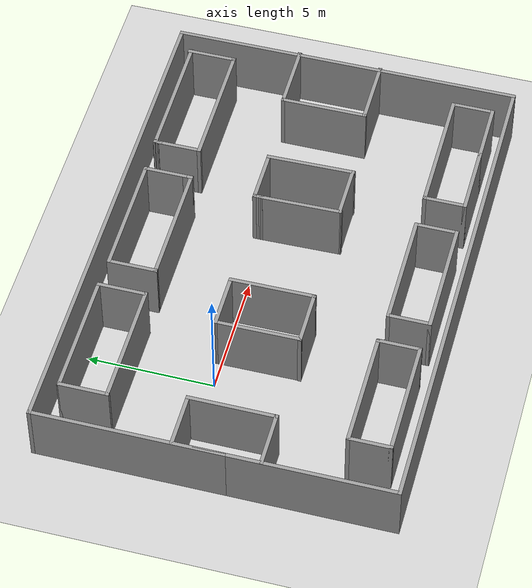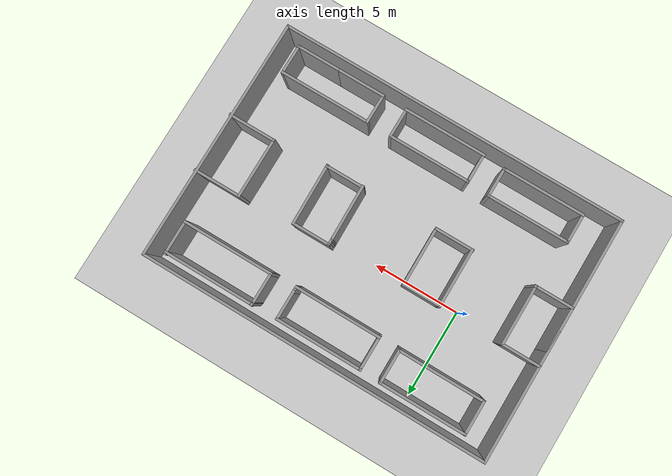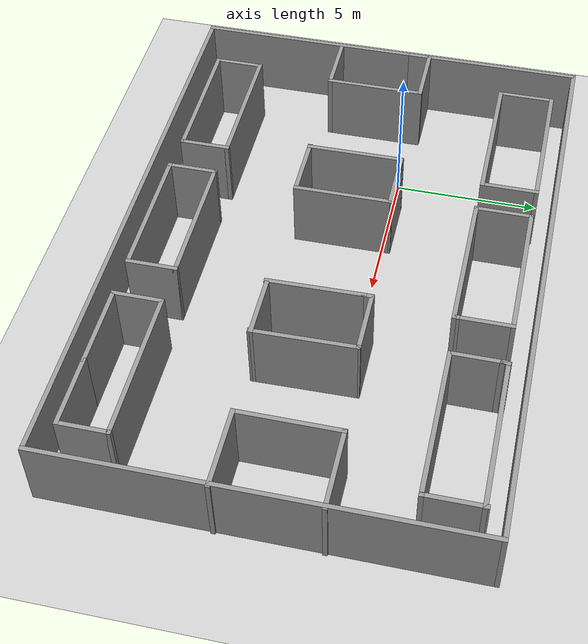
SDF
<sdf version="1.7">
 <world name="default">
  <model name="ground_plane">
   <static>1</static>
   <link name="link">
    <collision name="collision">
     <geometry><plane><normal>0 0 1</normal><size>100 100</size></plane></geometry>
     <surface><friction><ode><mu>100</mu><mu2>50</mu2></ode></friction></surface>
    </collision>
    <visual name="visual">
     <cast_shadows>0</cast_shadows>
     <geometry><plane><normal>0 0 1</normal><size>100 100</size></plane></geometry>
     <material>
      <script><uri>file://media/materials/scripts/gazebo.material</uri><name>Gazebo/Grey</name></script>
     </material>
    </visual>
   </link>
  </model>
  <light name="sun" type="directional">
   <pose>0 0 10 0 -0 0</pose>
   <diffuse>0.8 0.8 0.8 1</diffuse>
   <specular>0.2 0.2 0.2 1</specular>
   <attenuation>
    <range>1000</range>
    <constant>0.9</constant>
    <linear>0.01</linear>
    <quadratic>0.001</quadratic>
   </attenuation>
   <direction>-0.5 0.1 -0.9</direction>
   <spot><inner_angle>0</inner_angle><outer_angle>0</outer_angle><falloff>0</falloff></spot>
  </light>
  <scene><shadows>0</shadows><ambient>0.4 0.4 0.4 1</ambient><background>0.7 0.7 0.7 1</background></scene>
  <physics type="ode">
   <real_time_update_rate>1000</real_time_update_rate>
   <max_step_size>0.001</max_step_size>
   <real_time_factor>1</real_time_factor>
   <ode>
    <solver>
     <type>quick</type>
     <iters>150</iters>
     <precon_iters>0</precon_iters>
     <sor>1.4</sor>
     <use_dynamic_moi_rescaling>1</use_dynamic_moi_rescaling>
    </solver>
    <constraints>
     <cfm>1e-05</cfm>
     <erp>0.2</erp>
     <contact_max_correcting_vel>2000</contact_max_correcting_vel>
     <contact_surface_layer>0.01</contact_surface_layer>
    </constraints>
   </ode>
  </physics>
  <gravity>0 0 -9.8</gravity>
  <magnetic_field>6e-06 2.3e-05 -4.2e-05</magnetic_field>
  <atmosphere type="adiabatic"/>
  <audio><device>default</device></audio>
  <spherical_coordinates>
   <surface_model>EARTH_WGS84</surface_model>
   <latitude_deg>0</latitude_deg>
   <longitude_deg>0</longitude_deg>
   <elevation>0</elevation>
   <heading_deg>0</heading_deg>
  </spherical_coordinates>
  <model name="Untitled">
   <pose>5.33523 -1.27493 0 0 -0 0</pose>
   <link name="Wall_101">
    <collision name="Wall_101_Collision">
     <geometry><box><size>2 0.15 2.5</size></box></geometry>
     <pose>0 0 1.25 0 -0 0</pose>
    </collision>
    <visual name="Wall_101_Visual">
     <pose>0 0 1.25 0 -0 0</pose>
     <geometry><box><size>2 0.15 2.5</size></box></geometry>
     <material>
      <script><uri>file://media/materials/scripts/gazebo.material</uri><name>Gazebo/Grey</name></script>
      <ambient>1 1 1 1</ambient>
     </material>
     <meta><layer>0</layer></meta>
    </visual>
    <pose>-3.60655 5.34323 0 0 -0 1.5708</pose>
   </link>
   <link name="Wall_102">
    <collision name="Wall_102_Collision">
     <geometry><box><size>5 0.15 2.5</size></box></geometry>
     <pose>0 0 1.25 0 -0 0</pose>
    </collision>
    <visual name="Wall_102_Visual">
     <pose>0 0 1.25 0 -0 0</pose>
     <geometry><box><size>5 0.15 2.5</size></box></geometry>
     <material>
      <script><uri>file://media/materials/scripts/gazebo.material</uri><name>Gazebo/Grey</name></script>
      <ambient>1 1 1 1</ambient>
     </material>
     <meta><layer>0</layer></meta>
    </visual>
    <pose>-6.03155 6.26823 0 0 -0 3.14159</pose>
   </link>
   <link name="Wall_103">
    <collision name="Wall_103_Collision">
     <geometry><box><size>2 0.15 2.5</size></box></geometry>
     <pose>0 0 1.25 0 -0 0</pose>
    </collision>
    <visual name="Wall_103_Visual">
     <pose>0 0 1.25 0 -0 0</pose>
     <geometry><box><size>2 0.15 2.5</size></box></geometry>
     <material>
      <script><uri>file://media/materials/scripts/gazebo.material</uri><name>Gazebo/Grey</name></script>
      <ambient>1 1 1 1</ambient>
     </material>
     <meta><layer>0</layer></meta>
    </visual>
    <pose>-8.45655 5.34323 0 0 -0 -1.5708</pose>
   </link>
   <link name="Wall_104">
    <collision name="Wall_104_Collision">
     <geometry><box><size>5 0.15 2.5</size></box></geometry>
     <pose>0 0 1.25 0 -0 0</pose>
    </collision>
    <visual name="Wall_104_Visual">
     <pose>0 0 1.25 0 -0 0</pose>
     <geometry><box><size>5 0.15 2.5</size></box></geometry>
     <material>
      <script><uri>file://media/materials/scripts/gazebo.material</uri><name>Gazebo/Grey</name></script>
      <ambient>1 1 1 1</ambient>
     </material>
     <meta><layer>0</layer></meta>
    </visual>
    <pose>-6.03155 4.41823 0 0 -0 0</pose>
   </link>
   <link name="Wall_106">
    <collision name="Wall_106_Collision">
     <geometry><box><size>3.40801 0.15 2.5</size></box></geometry>
     <pose>0 0 1.25 0 -0 0</pose>
    </collision>
    <visual name="Wall_106_Visual">
     <pose>0 0 1.25 0 -0 0</pose>
     <geometry><box><size>3.40801 0.15 2.5</size></box></geometry>
     <material>
      <script><uri>file://media/materials/scripts/gazebo.material</uri><name>Gazebo/Grey</name></script>
      <ambient>1 1 1 1</ambient>
     </material>
     <meta><layer>0</layer></meta>
    </visual>
    <pose>-4.19944 -0.126573 0 0 -0 -1.56462</pose>
   </link>
   <link name="Wall_107">
    <collision name="Wall_107_Collision">
     <geometry><box><size>2.25 0.15 2.5</size></box></geometry>
     <pose>0 0 1.25 0 -0 0</pose>
    </collision>
    <visual name="Wall_107_Visual">
     <pose>0 0 1.25 0 -0 0</pose>
     <geometry><box><size>2.25 0.15 2.5</size></box></geometry>
     <material>
      <script><uri>file://media/materials/scripts/gazebo.material</uri><name>Gazebo/Grey</name></script>
      <ambient>1 1 1 1</ambient>
     </material>
     <meta><layer>0</layer></meta>
    </visual>
    <pose>-3.1595 -1.75555 0 0 -0 0</pose>
   </link>
   <link name="Wall_108">
    <collision name="Wall_108_Collision">
     <geometry><box><size>3.40801 0.15 2.5</size></box></geometry>
     <pose>0 0 1.25 0 -0 0</pose>
    </collision>
    <visual name="Wall_108_Visual">
     <pose>0 0 1.25 0 -0 0</pose>
     <geometry><box><size>3.40801 0.15 2.5</size></box></geometry>
     <material>
      <script><uri>file://media/materials/scripts/gazebo.material</uri><name>Gazebo/Grey</name></script>
      <ambient>1 1 1 1</ambient>
     </material>
     <meta><layer>0</layer></meta>
    </visual>
    <pose>-2.09944 -0.126573 0 0 -0 1.57697</pose>
   </link>
   <link name="Wall_109">
    <collision name="Wall_109_Collision">
     <geometry><box><size>2.25 0.15 2.5</size></box></geometry>
     <pose>0 0 1.25 0 -0 0</pose>
    </collision>
    <visual name="Wall_109_Visual">
     <pose>0 0 1.25 0 -0 0</pose>
     <geometry><box><size>2.25 0.15 2.5</size></box></geometry>
     <material>
      <script><uri>file://media/materials/scripts/gazebo.material</uri><name>Gazebo/Grey</name></script>
      <ambient>1 1 1 1</ambient>
     </material>
     <meta><layer>0</layer></meta>
    </visual>
    <pose>-3.1595 1.5024 0 0 -0 3.14159</pose>
   </link>
   <link name="Wall_111">
    <collision name="Wall_111_Collision">
     <geometry><box><size>3.31069 0.15 2.5</size></box></geometry>
     <pose>0 0 1.25 0 -0 0</pose>
    </collision>
    <visual name="Wall_111_Visual">
     <pose>0 0 1.25 0 -0 0</pose>
     <geometry><box><size>3.31069 0.15 2.5</size></box></geometry>
     <material>
      <script><uri>file://media/materials/scripts/gazebo.material</uri><name>Gazebo/Grey</name></script>
      <ambient>1 1 1 1</ambient>
     </material>
     <meta><layer>0</layer></meta>
    </visual>
    <pose>2.18386 -0.108239 0 0 -0 -1.55144</pose>
   </link>
   <link name="Wall_112">
    <collision name="Wall_112_Collision">
     <geometry><box><size>2.25 0.15 2.5</size></box></geometry>
     <pose>0 0 1.25 0 -0 0</pose>
    </collision>
    <visual name="Wall_112_Visual">
     <pose>0 0 1.25 0 -0 0</pose>
     <geometry><box><size>2.25 0.15 2.5</size></box></geometry>
     <material>
      <script><uri>file://media/materials/scripts/gazebo.material</uri><name>Gazebo/Grey</name></script>
      <ambient>1 1 1 1</ambient>
     </material>
     <meta><layer>0</layer></meta>
    </visual>
    <pose>3.26445 -1.6577 0 0 -0 0</pose>
   </link>
   <link name="Wall_113">
    <collision name="Wall_113_Collision">
     <geometry><box><size>3.56065 0.15 2.5</size></box></geometry>
     <pose>0 0 1.25 0 -0 0</pose>
    </collision>
    <visual name="Wall_113_Visual">
     <pose>0 0 1.25 0 -0 0</pose>
     <geometry><box><size>3.56065 0.15 2.5</size></box></geometry>
     <material>
      <script><uri>file://media/materials/scripts/gazebo.material</uri><name>Gazebo/Grey</name></script>
      <ambient>1 1 1 1</ambient>
     </material>
     <meta><layer>0</layer></meta>
    </visual>
    <pose>4.28386 0.016761 0 0 -0 1.58874</pose>
   </link>
   <link name="Wall_114">
    <collision name="Wall_114_Collision">
     <geometry><box><size>2.25 0.15 2.5</size></box></geometry>
     <pose>0 0 1.25 0 -0 0</pose>
    </collision>
    <visual name="Wall_114_Visual">
     <pose>0 0 1.25 0 -0 0</pose>
     <geometry><box><size>2.25 0.15 2.5</size></box></geometry>
     <material>
      <script><uri>file://media/materials/scripts/gazebo.material</uri><name>Gazebo/Grey</name></script>
      <ambient>1 1 1 1</ambient>
     </material>
     <meta><layer>0</layer></meta>
    </visual>
    <pose>3.20327 1.72181 0 0 -0 3.14159</pose>
   </link>
   <link name="Wall_115">
    <collision name="Wall_115_Collision">
     <geometry><box><size>0.4 0.15 2.5</size></box></geometry>
     <pose>0 0 1.25 0 -0 0</pose>
    </collision>
    <visual name="Wall_115_Visual">
     <pose>0 0 1.25 0 -0 0</pose>
     <geometry><box><size>0.4 0.15 2.5</size></box></geometry>
     <material>
      <script><uri>file://media/materials/scripts/gazebo.material</uri><name>Gazebo/Grey</name></script>
      <ambient>1 1 1 1</ambient>
     </material>
     <meta><layer>0</layer></meta>
    </visual>
    <pose>2.15327 1.59681 0 0 -0 -1.5708</pose>
   </link>
   <link name="Wall_117">
    <collision name="Wall_117_Collision">
     <geometry><box><size>2.25 0.15 2.5</size></box></geometry>
     <pose>0 0 1.25 0 -0 0</pose>
    </collision>
    <visual name="Wall_117_Visual">
     <pose>0 0 1.25 0 -0 0</pose>
     <geometry><box><size>2.25 0.15 2.5</size></box></geometry>
     <material>
      <script><uri>file://media/materials/scripts/gazebo.material</uri><name>Gazebo/Grey</name></script>
      <ambient>1 1 1 1</ambient>
     </material>
     <meta><layer>0</layer></meta>
    </visual>
    <pose>-8.89305 1.52827 0 0 -0 0</pose>
   </link>
   <link name="Wall_118">
    <collision name="Wall_118_Collision">
     <geometry><box><size>3.5 0.15 2.5</size></box></geometry>
     <pose>0 0 1.25 0 -0 0</pose>
    </collision>
    <visual name="Wall_118_Visual">
     <pose>0 0 1.25 0 -0 0</pose>
     <geometry><box><size>3.5 0.15 2.5</size></box></geometry>
     <material>
      <script><uri>file://media/materials/scripts/gazebo.material</uri><name>Gazebo/Grey</name></script>
      <ambient>1 1 1 1</ambient>
     </material>
     <meta><layer>0</layer></meta>
    </visual>
    <pose>-7.84305 -0.146726 0 0 -0 -1.5708</pose>
   </link>
   <link name="Wall_119">
    <collision name="Wall_119_Collision">
     <geometry><box><size>2.25 0.15 2.5</size></box></geometry>
     <pose>0 0 1.25 0 -0 0</pose>
    </collision>
    <visual name="Wall_119_Visual">
     <pose>0 0 1.25 0 -0 0</pose>
     <geometry><box><size>2.25 0.15 2.5</size></box></geometry>
     <material>
      <script><uri>file://media/materials/scripts/gazebo.material</uri><name>Gazebo/Grey</name></script>
      <ambient>1 1 1 1</ambient>
     </material>
     <meta><layer>0</layer></meta>
    </visual>
    <pose>-8.89305 -1.82173 0 0 -0 3.14159</pose>
   </link>
   <link name="Wall_121">
    <collision name="Wall_121_Collision">
     <geometry><box><size>2.75 0.15 2.5</size></box></geometry>
     <pose>0 0 1.25 0 -0 0</pose>
    </collision>
    <visual name="Wall_121_Visual">
     <pose>0 0 1.25 0 -0 0</pose>
     <geometry><box><size>2.75 0.15 2.5</size></box></geometry>
     <material>
      <script><uri>file://media/materials/scripts/gazebo.material</uri><name>Gazebo/Grey</name></script>
      <ambient>1 1 1 1</ambient>
     </material>
     <meta><layer>0</layer></meta>
    </visual>
    <pose>8.6539 1.95388 0 0 -0 3.14159</pose>
   </link>
   <link name="Wall_122">
    <collision name="Wall_122_Collision">
     <geometry><box><size>3.5 0.15 2.5</size></box></geometry>
     <pose>0 0 1.25 0 -0 0</pose>
    </collision>
    <visual name="Wall_122_Visual">
     <pose>0 0 1.25 0 -0 0</pose>
     <geometry><box><size>3.5 0.15 2.5</size></box></geometry>
     <material>
      <script><uri>file://media/materials/scripts/gazebo.material</uri><name>Gazebo/Grey</name></script>
      <ambient>1 1 1 1</ambient>
     </material>
     <meta><layer>0</layer></meta>
    </visual>
    <pose>7.3539 0.278877 0 0 -0 -1.5708</pose>
   </link>
   <link name="Wall_123">
    <collision name="Wall_123_Collision">
     <geometry><box><size>2.75 0.15 2.5</size></box></geometry>
     <pose>0 0 1.25 0 -0 0</pose>
    </collision>
    <visual name="Wall_123_Visual">
     <pose>0 0 1.25 0 -0 0</pose>
     <geometry><box><size>2.75 0.15 2.5</size></box></geometry>
     <material>
      <script><uri>file://media/materials/scripts/gazebo.material</uri><name>Gazebo/Grey</name></script>
      <ambient>1 1 1 1</ambient>
     </material>
     <meta><layer>0</layer></meta>
    </visual>
    <pose>8.6539 -1.39612 0 0 -0 0</pose>
   </link>
   <link name="Wall_66">
    <collision name="Wall_66_Collision">
     <geometry><box><size>7.75 0.15 2.5</size></box></geometry>
     <pose>0 0 1.25 0 -0 0</pose>
    </collision>
    <visual name="Wall_66_Visual">
     <pose>0 0 1.25 0 -0 0</pose>
     <geometry><box><size>7.75 0.15 2.5</size></box></geometry>
     <material>
      <script><uri>file://media/materials/scripts/gazebo.material</uri><name>Gazebo/Grey</name></script>
      <ambient>1 1 1 1</ambient>
     </material>
     <meta><layer>0</layer></meta>
    </visual>
    <pose>-9.9539 -3.125 0 0 -0 -1.5708</pose>
   </link>
   <link name="Wall_67">
    <collision name="Wall_67_Collision">
     <geometry><box><size>20 0.15 2.5</size></box></geometry>
     <pose>0 0 1.25 0 -0 0</pose>
    </collision>
    <visual name="Wall_67_Visual">
     <pose>0 0 1.25 0 -0 0</pose>
     <geometry><box><size>20 0.15 2.5</size></box></geometry>
     <material>
      <script><uri>file://media/materials/scripts/gazebo.material</uri><name>Gazebo/Grey</name></script>
      <ambient>1 1 1 1</ambient>
     </material>
     <meta><layer>0</layer></meta>
    </visual>
    <pose>-0.028904 -6.925 0 0 -0 0</pose>
   </link>
   <link name="Wall_68">
    <collision name="Wall_68_Collision">
     <geometry><box><size>14 0.15 2.5</size></box></geometry>
     <pose>0 0 1.25 0 -0 0</pose>
    </collision>
    <visual name="Wall_68_Visual">
     <pose>0 0 1.25 0 -0 0</pose>
     <geometry><box><size>14 0.15 2.5</size></box></geometry>
     <material>
      <script><uri>file://media/materials/scripts/gazebo.material</uri><name>Gazebo/Grey</name></script>
      <ambient>1 1 1 1</ambient>
     </material>
     <meta><layer>0</layer></meta>
    </visual>
    <pose>9.8961 0 0 0 -0 1.5708</pose>
   </link>
   <link name="Wall_69">
    <collision name="Wall_69_Collision">
     <geometry><box><size>20 0.15 2.5</size></box></geometry>
     <pose>0 0 1.25 0 -0 0</pose>
    </collision>
    <visual name="Wall_69_Visual">
     <pose>0 0 1.25 0 -0 0</pose>
     <geometry><box><size>20 0.15 2.5</size></box></geometry>
     <material>
      <script><uri>file://media/materials/scripts/gazebo.material</uri><name>Gazebo/Grey</name></script>
      <ambient>1 1 1 1</ambient>
     </material>
     <meta><layer>0</layer></meta>
    </visual>
    <pose>-0.028904 6.925 0 0 -0 3.14159</pose>
   </link>
   <link name="Wall_70">
    <collision name="Wall_70_Collision">
     <geometry><box><size>7.5 0.15 2.5</size></box></geometry>
     <pose>0 0 1.25 0 -0 0</pose>
    </collision>
    <visual name="Wall_70_Visual">
     <pose>0 0 1.25 0 -0 0</pose>
     <geometry><box><size>7.5 0.15 2.5</size></box></geometry>
     <material>
      <script><uri>file://media/materials/scripts/gazebo.material</uri><name>Gazebo/Grey</name></script>
      <ambient>1 1 1 1</ambient>
     </material>
     <meta><layer>0</layer></meta>
    </visual>
    <pose>-9.9539 3.25 0 0 -0 -1.5708</pose>
   </link>
   <link name="Wall_72">
    <collision name="Wall_72_Collision">
     <geometry><box><size>2.5 0.15 2.5</size></box></geometry>
     <pose>0 0 1.25 0 -0 0</pose>
    </collision>
    <visual name="Wall_72_Visual">
     <pose>0 0 1.25 0 -0 0</pose>
     <geometry><box><size>2.5 0.15 2.5</size></box></geometry>
     <material>
      <script><uri>file://media/materials/scripts/gazebo.material</uri><name>Gazebo/Grey</name></script>
      <ambient>1 1 1 1</ambient>
     </material>
     <meta><layer>0</layer></meta>
    </visual>
    <pose>7.67157 -6.28468 0 0 -0 0</pose>
   </link>
   <link name="Wall_73">
    <collision name="Wall_73_Collision">
     <geometry><box><size>1.75 0.15 2.5</size></box></geometry>
     <pose>0 0 1.25 0 -0 0</pose>
    </collision>
    <visual name="Wall_73_Visual">
     <pose>0 0 1.25 0 -0 0</pose>
     <geometry><box><size>1.75 0.15 2.5</size></box></geometry>
     <material>
      <script><uri>file://media/materials/scripts/gazebo.material</uri><name>Gazebo/Grey</name></script>
      <ambient>1 1 1 1</ambient>
     </material>
     <meta><layer>0</layer></meta>
    </visual>
    <pose>8.84657 -5.48468 0 0 -0 1.5708</pose>
   </link>
   <link name="Wall_74">
    <collision name="Wall_74_Collision">
     <geometry><box><size>5.25 0.15 2.5</size></box></geometry>
     <pose>0 0 1.25 0 -0 0</pose>
    </collision>
    <visual name="Wall_74_Visual">
     <pose>0 0 1.25 0 -0 0</pose>
     <geometry><box><size>5.25 0.15 2.5</size></box></geometry>
     <material>
      <script><uri>file://media/materials/scripts/gazebo.material</uri><name>Gazebo/Grey</name></script>
      <ambient>1 1 1 1</ambient>
     </material>
     <meta><layer>0</layer></meta>
    </visual>
    <pose>6.29657 -4.68468 0 0 -0 3.14159</pose>
   </link>
   <link name="Wall_75">
    <collision name="Wall_75_Collision">
     <geometry><box><size>1.75 0.15 2.5</size></box></geometry>
     <pose>0 0 1.25 0 -0 0</pose>
    </collision>
    <visual name="Wall_75_Visual">
     <pose>0 0 1.25 0 -0 0</pose>
     <geometry><box><size>1.75 0.15 2.5</size></box></geometry>
     <material>
      <script><uri>file://media/materials/scripts/gazebo.material</uri><name>Gazebo/Grey</name></script>
      <ambient>1 1 1 1</ambient>
     </material>
     <meta><layer>0</layer></meta>
    </visual>
    <pose>3.74657 -5.48468 0 0 -0 -1.5708</pose>
   </link>
   <link name="Wall_76">
    <collision name="Wall_76_Collision">
     <geometry><box><size>2.9 0.15 2.5</size></box></geometry>
     <pose>0 0 1.25 0 -0 0</pose>
    </collision>
    <visual name="Wall_76_Visual">
     <pose>0 0 1.25 0 -0 0</pose>
     <geometry><box><size>2.9 0.15 2.5</size></box></geometry>
     <material>
      <script><uri>file://media/materials/scripts/gazebo.material</uri><name>Gazebo/Grey</name></script>
      <ambient>1 1 1 1</ambient>
     </material>
     <meta><layer>0</layer></meta>
    </visual>
    <pose>5.12157 -6.28468 0 0 -0 0</pose>
   </link>
   <link name="Wall_78">
    <collision name="Wall_78_Collision">
     <geometry><box><size>1.75 0.15 2.5</size></box></geometry>
     <pose>0 0 1.25 0 -0 0</pose>
    </collision>
    <visual name="Wall_78_Visual">
     <pose>0 0 1.25 0 -0 0</pose>
     <geometry><box><size>1.75 0.15 2.5</size></box></geometry>
     <material>
      <script><uri>file://media/materials/scripts/gazebo.material</uri><name>Gazebo/Grey</name></script>
      <ambient>1 1 1 1</ambient>
     </material>
     <meta><layer>0</layer></meta>
    </visual>
    <pose>2.34801 -5.46781 0 0 -0 1.5708</pose>
   </link>
   <link name="Wall_79">
    <collision name="Wall_79_Collision">
     <geometry><box><size>4.75 0.15 2.5</size></box></geometry>
     <pose>0 0 1.25 0 -0 0</pose>
    </collision>
    <visual name="Wall_79_Visual">
     <pose>0 0 1.25 0 -0 0</pose>
     <geometry><box><size>4.75 0.15 2.5</size></box></geometry>
     <material>
      <script><uri>file://media/materials/scripts/gazebo.material</uri><name>Gazebo/Grey</name></script>
      <ambient>1 1 1 1</ambient>
     </material>
     <meta><layer>0</layer></meta>
    </visual>
    <pose>0.048008 -4.66782 0 0 -0 3.14159</pose>
   </link>
   <link name="Wall_80">
    <collision name="Wall_80_Collision">
     <geometry><box><size>1.75 0.15 2.5</size></box></geometry>
     <pose>0 0 1.25 0 -0 0</pose>
    </collision>
    <visual name="Wall_80_Visual">
     <pose>0 0 1.25 0 -0 0</pose>
     <geometry><box><size>1.75 0.15 2.5</size></box></geometry>
     <material>
      <script><uri>file://media/materials/scripts/gazebo.material</uri><name>Gazebo/Grey</name></script>
      <ambient>1 1 1 1</ambient>
     </material>
     <meta><layer>0</layer></meta>
    </visual>
    <pose>-2.25199 -5.46781 0 0 -0 -1.5708</pose>
   </link>
   <link name="Wall_81">
    <collision name="Wall_81_Collision">
     <geometry><box><size>4.75 0.15 2.5</size></box></geometry>
     <pose>0 0 1.25 0 -0 0</pose>
    </collision>
    <visual name="Wall_81_Visual">
     <pose>0 0 1.25 0 -0 0</pose>
     <geometry><box><size>4.75 0.15 2.5</size></box></geometry>
     <material>
      <script><uri>file://media/materials/scripts/gazebo.material</uri><name>Gazebo/Grey</name></script>
      <ambient>1 1 1 1</ambient>
     </material>
     <meta><layer>0</layer></meta>
    </visual>
    <pose>0.048008 -6.26782 0 0 -0 0</pose>
   </link>
   <link name="Wall_83">
    <collision name="Wall_83_Collision">
     <geometry><box><size>1.75 0.15 2.5</size></box></geometry>
     <pose>0 0 1.25 0 -0 0</pose>
    </collision>
    <visual name="Wall_83_Visual">
     <pose>0 0 1.25 0 -0 0</pose>
     <geometry><box><size>1.75 0.15 2.5</size></box></geometry>
     <material>
      <script><uri>file://media/materials/scripts/gazebo.material</uri><name>Gazebo/Grey</name></script>
      <ambient>1 1 1 1</ambient>
     </material>
     <meta><layer>0</layer></meta>
    </visual>
    <pose>-3.51067 -5.37524 0 0 -0 1.5708</pose>
   </link>
   <link name="Wall_84">
    <collision name="Wall_84_Collision">
     <geometry><box><size>4.75 0.15 2.5</size></box></geometry>
     <pose>0 0 1.25 0 -0 0</pose>
    </collision>
    <visual name="Wall_84_Visual">
     <pose>0 0 1.25 0 -0 0</pose>
     <geometry><box><size>4.75 0.15 2.5</size></box></geometry>
     <material>
      <script><uri>file://media/materials/scripts/gazebo.material</uri><name>Gazebo/Grey</name></script>
      <ambient>1 1 1 1</ambient>
     </material>
     <meta><layer>0</layer></meta>
    </visual>
    <pose>-5.81067 -4.57524 0 0 -0 3.14159</pose>
   </link>
   <link name="Wall_85">
    <collision name="Wall_85_Collision">
     <geometry><box><size>1.75 0.15 2.5</size></box></geometry>
     <pose>0 0 1.25 0 -0 0</pose>
    </collision>
    <visual name="Wall_85_Visual">
     <pose>0 0 1.25 0 -0 0</pose>
     <geometry><box><size>1.75 0.15 2.5</size></box></geometry>
     <material>
      <script><uri>file://media/materials/scripts/gazebo.material</uri><name>Gazebo/Grey</name></script>
      <ambient>1 1 1 1</ambient>
     </material>
     <meta><layer>0</layer></meta>
    </visual>
    <pose>-8.11067 -5.37524 0 0 -0 -1.5708</pose>
   </link>
   <link name="Wall_86">
    <collision name="Wall_86_Collision">
     <geometry><box><size>4.75 0.15 2.5</size></box></geometry>
     <pose>0 0 1.25 0 -0 0</pose>
    </collision>
    <visual name="Wall_86_Visual">
     <pose>0 0 1.25 0 -0 0</pose>
     <geometry><box><size>4.75 0.15 2.5</size></box></geometry>
     <material>
      <script><uri>file://media/materials/scripts/gazebo.material</uri><name>Gazebo/Grey</name></script>
      <ambient>1 1 1 1</ambient>
     </material>
     <meta><layer>0</layer></meta>
    </visual>
    <pose>-5.81067 -6.17524 0 0 -0 0</pose>
   </link>
   <link name="Wall_88">
    <collision name="Wall_88_Collision">
     <geometry><box><size>2 0.15 2.5</size></box></geometry>
     <pose>0 0 1.25 0 -0 0</pose>
    </collision>
    <visual name="Wall_88_Visual">
     <pose>0 0 1.25 0 -0 0</pose>
     <geometry><box><size>2 0.15 2.5</size></box></geometry>
     <material>
      <script><uri>file://media/materials/scripts/gazebo.material</uri><name>Gazebo/Grey</name></script>
      <ambient>1 1 1 1</ambient>
     </material>
     <meta><layer>0</layer></meta>
    </visual>
    <pose>8.9765 5.38994 0 0 -0 -1.5708</pose>
   </link>
   <link name="Wall_89">
    <collision name="Wall_89_Collision">
     <geometry><box><size>5.25 0.15 2.5</size></box></geometry>
     <pose>0 0 1.25 0 -0 0</pose>
    </collision>
    <visual name="Wall_89_Visual">
     <pose>0 0 1.25 0 -0 0</pose>
     <geometry><box><size>5.25 0.15 2.5</size></box></geometry>
     <material>
      <script><uri>file://media/materials/scripts/gazebo.material</uri><name>Gazebo/Grey</name></script>
      <ambient>1 1 1 1</ambient>
     </material>
     <meta><layer>0</layer></meta>
    </visual>
    <pose>6.4265 4.46494 0 0 -0 3.14159</pose>
   </link>
   <link name="Wall_90">
    <collision name="Wall_90_Collision">
     <geometry><box><size>1.75 0.15 2.5</size></box></geometry>
     <pose>0 0 1.25 0 -0 0</pose>
    </collision>
    <visual name="Wall_90_Visual">
     <pose>0 0 1.25 0 -0 0</pose>
     <geometry><box><size>1.75 0.15 2.5</size></box></geometry>
     <material>
      <script><uri>file://media/materials/scripts/gazebo.material</uri><name>Gazebo/Grey</name></script>
      <ambient>1 1 1 1</ambient>
     </material>
     <meta><layer>0</layer></meta>
    </visual>
    <pose>3.8765 5.26494 0 0 -0 1.5708</pose>
   </link>
   <link name="Wall_91">
    <collision name="Wall_91_Collision">
     <geometry><box><size>0.25 0.15 2.5</size></box></geometry>
     <pose>0 0 1.25 0 -0 0</pose>
    </collision>
    <visual name="Wall_91_Visual">
     <pose>0 0 1.25 0 -0 0</pose>
     <geometry><box><size>0.25 0.15 2.5</size></box></geometry>
     <material>
      <script><uri>file://media/materials/scripts/gazebo.material</uri><name>Gazebo/Grey</name></script>
      <ambient>1 1 1 1</ambient>
     </material>
     <meta><layer>0</layer></meta>
    </visual>
    <pose>3.8765 6.11494 0 0 -0 1.5708</pose>
   </link>
   <link name="Wall_92">
    <collision name="Wall_92_Collision">
     <geometry><box><size>0.25 0.15 2.5</size></box></geometry>
     <pose>0 0 1.25 0 -0 0</pose>
    </collision>
    <visual name="Wall_92_Visual">
     <pose>0 0 1.25 0 -0 0</pose>
     <geometry><box><size>0.25 0.15 2.5</size></box></geometry>
     <material>
      <script><uri>file://media/materials/scripts/gazebo.material</uri><name>Gazebo/Grey</name></script>
      <ambient>1 1 1 1</ambient>
     </material>
     <meta><layer>0</layer></meta>
    </visual>
    <pose>3.88944 6.21324 0 0 -0 1.309</pose>
   </link>
   <link name="Wall_93">
    <collision name="Wall_93_Collision">
     <geometry><box><size>5.25 0.15 2.5</size></box></geometry>
     <pose>0 0 1.25 0 -0 0</pose>
    </collision>
    <visual name="Wall_93_Visual">
     <pose>0 0 1.25 0 -0 0</pose>
     <geometry><box><size>5.25 0.15 2.5</size></box></geometry>
     <material>
      <script><uri>file://media/materials/scripts/gazebo.material</uri><name>Gazebo/Grey</name></script>
      <ambient>1 1 1 1</ambient>
     </material>
     <meta><layer>0</layer></meta>
    </visual>
    <pose>6.45238 6.26153 0 0 -0 0</pose>
   </link>
   <link name="Wall_95">
    <collision name="Wall_95_Collision">
     <geometry><box><size>1.75 0.15 2.5</size></box></geometry>
     <pose>0 0 1.25 0 -0 0</pose>
    </collision>
    <visual name="Wall_95_Visual">
     <pose>0 0 1.25 0 -0 0</pose>
     <geometry><box><size>1.75 0.15 2.5</size></box></geometry>
     <material>
      <script><uri>file://media/materials/scripts/gazebo.material</uri><name>Gazebo/Grey</name></script>
      <ambient>1 1 1 1</ambient>
     </material>
     <meta><layer>0</layer></meta>
    </visual>
    <pose>2.43053 5.42641 0 0 -0 1.5708</pose>
   </link>
   <link name="Wall_96">
    <collision name="Wall_96_Collision">
     <geometry><box><size>5 0.15 2.5</size></box></geometry>
     <pose>0 0 1.25 0 -0 0</pose>
    </collision>
    <visual name="Wall_96_Visual">
     <pose>0 0 1.25 0 -0 0</pose>
     <geometry><box><size>5 0.15 2.5</size></box></geometry>
     <material>
      <script><uri>file://media/materials/scripts/gazebo.material</uri><name>Gazebo/Grey</name></script>
      <ambient>1 1 1 1</ambient>
     </material>
     <meta><layer>0</layer></meta>
    </visual>
    <pose>0.005535 6.22641 0 0 -0 3.14159</pose>
   </link>
   <link name="Wall_97">
    <collision name="Wall_97_Collision">
     <geometry><box><size>2 0.15 2.5</size></box></geometry>
     <pose>0 0 1.25 0 -0 0</pose>
    </collision>
    <visual name="Wall_97_Visual">
     <pose>0 0 1.25 0 -0 0</pose>
     <geometry><box><size>2 0.15 2.5</size></box></geometry>
     <material>
      <script><uri>file://media/materials/scripts/gazebo.material</uri><name>Gazebo/Grey</name></script>
      <ambient>1 1 1 1</ambient>
     </material>
     <meta><layer>0</layer></meta>
    </visual>
    <pose>-2.41947 5.30141 0 0 -0 -1.5708</pose>
   </link>
   <link name="Wall_98">
    <collision name="Wall_98_Collision">
     <geometry><box><size>5 0.15 2.5</size></box></geometry>
     <pose>0 0 1.25 0 -0 0</pose>
    </collision>
    <visual name="Wall_98_Visual">
     <pose>0 0 1.25 0 -0 0</pose>
     <geometry><box><size>5 0.15 2.5</size></box></geometry>
     <material>
      <script><uri>file://media/materials/scripts/gazebo.material</uri><name>Gazebo/Grey</name></script>
      <ambient>1 1 1 1</ambient>
     </material>
     <meta><layer>0</layer></meta>
    </visual>
    <pose>0.005535 4.37641 0 0 -0 0</pose>
   </link>
   <link name="Wall_99">
    <collision name="Wall_99_Collision">
     <geometry><box><size>0.4 0.15 2.5</size></box></geometry>
     <pose>0 0 1.25 0 -0 0</pose>
    </collision>
    <visual name="Wall_99_Visual">
     <pose>0 0 1.25 0 -0 0</pose>
     <geometry><box><size>0.4 0.15 2.5</size></box></geometry>
     <material>
      <script><uri>file://media/materials/scripts/gazebo.material</uri><name>Gazebo/Grey</name></script>
      <ambient>1 1 1 1</ambient>
     </material>
     <meta><layer>0</layer></meta>
    </visual>
    <pose>2.43053 4.50141 0 0 -0 1.5708</pose>
   </link>
   <static>1</static>
  </model>
 </world>
</sdf>
